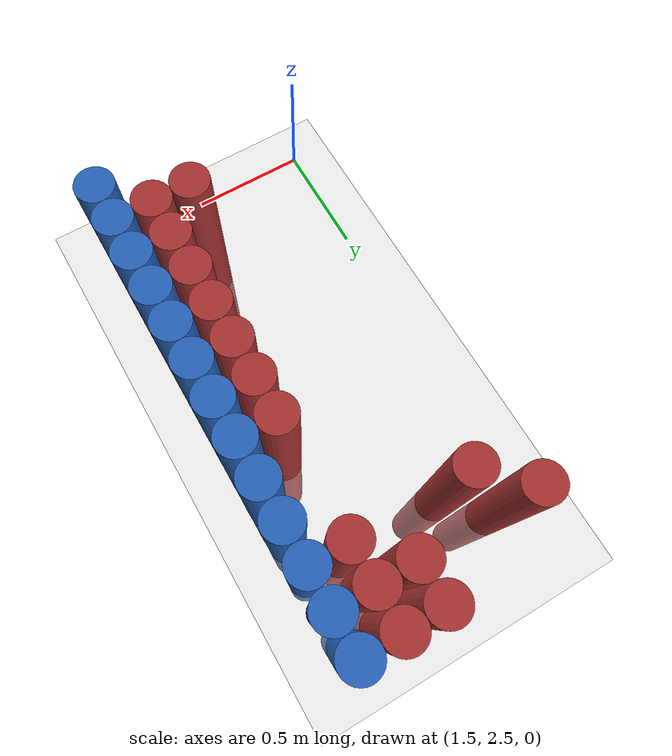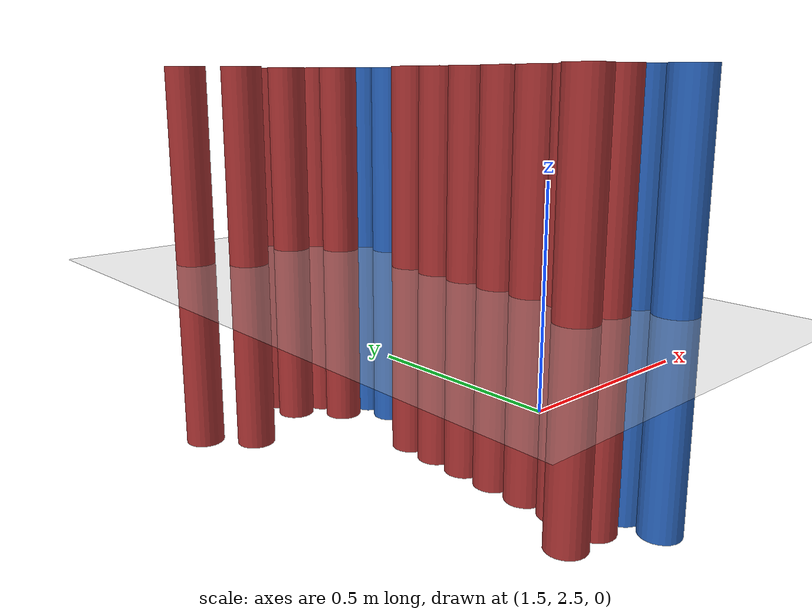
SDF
<sdf version="1.6">
 <world name="default">
  <model name="ground_plane">
   <static>1</static>
   <link name="link">
    <collision name="collision">
     <geometry><plane><normal>0 0 1</normal><size>100 100</size></plane></geometry>
     <surface><friction><ode><mu>100</mu><mu2>50</mu2></ode></friction></surface>
    </collision>
    <visual name="visual">
     <cast_shadows>0</cast_shadows>
     <geometry><plane><normal>0 0 1</normal><size>100 100</size></plane></geometry>
     <material>
      <script><uri>file://media/materials/scripts/gazebo.material</uri><name>Gazebo/Grey</name></script>
     </material>
    </visual>
   </link>
  </model>
  <model name="unit_cylinder_207">
   <static>1</static>
   <pose>1.675000 4.375000 0.000000 0.000000 0.000000 0.000000</pose>
   <link name="link">
    <inertial>
     <mass>1</mass>
     <inertia><ixx>0.145833</ixx><ixy>0</ixy><ixz>0</ixz><iyy>0.145833</iyy><iyz>0</iyz><izz>0.125</izz></inertia>
    </inertial>
    <collision name="collision">
     <geometry><cylinder><radius>0.075000</radius><length>1.5</length></cylinder></geometry>
    </collision>
    <visual name="visual">
     <geometry><cylinder><radius>0.075000</radius><length>1.5</length></cylinder></geometry>
     <material>
      <ambient>0.648000 0.192000 0.192000 1</ambient>
      <diffuse>0.648000 0.192000 0.192000 1</diffuse>
     </material>
     <material>
      <script><name>Gazebo/Grey</name><uri>file://media/materials/scripts/gazebo.material</uri></script>
     </material>
    </visual>
   </link>
  </model>
  <model name="unit_cylinder_213">
   <static>1</static>
   <pose>1.825000 4.225000 0.000000 0.000000 0.000000 0.000000</pose>
   <link name="link">
    <inertial>
     <mass>1</mass>
     <inertia><ixx>0.145833</ixx><ixy>0</ixy><ixz>0</ixz><iyy>0.145833</iyy><iyz>0</iyz><izz>0.125</izz></inertia>
    </inertial>
    <collision name="collision">
     <geometry><cylinder><radius>0.075000</radius><length>1.5</length></cylinder></geometry>
    </collision>
    <visual name="visual">
     <geometry><cylinder><radius>0.075000</radius><length>1.5</length></cylinder></geometry>
     <material>
      <ambient>0.648000 0.192000 0.192000 1</ambient>
      <diffuse>0.648000 0.192000 0.192000 1</diffuse>
     </material>
     <material>
      <script><name>Gazebo/Grey</name><uri>file://media/materials/scripts/gazebo.material</uri></script>
     </material>
    </visual>
   </link>
  </model>
  <model name="unit_cylinder_219">
   <static>1</static>
   <pose>2.125000 2.875000 0.000000 0.000000 0.000000 0.000000</pose>
   <link name="link">
    <inertial>
     <mass>1</mass>
     <inertia><ixx>0.145833</ixx><ixy>0</ixy><ixz>0</ixz><iyy>0.145833</iyy><iyz>0</iyz><izz>0.125</izz></inertia>
    </inertial>
    <collision name="collision">
     <geometry><cylinder><radius>0.075000</radius><length>1.5</length></cylinder></geometry>
    </collision>
    <visual name="visual">
     <geometry><cylinder><radius>0.075000</radius><length>1.5</length></cylinder></geometry>
     <material>
      <ambient>0.648000 0.192000 0.192000 1</ambient>
      <diffuse>0.648000 0.192000 0.192000 1</diffuse>
     </material>
     <material>
      <script><name>Gazebo/Grey</name><uri>file://media/materials/scripts/gazebo.material</uri></script>
     </material>
    </visual>
   </link>
  </model>
  <model name="unit_cylinder_220">
   <static>1</static>
   <pose>2.125000 4.375000 0.000000 0.000000 0.000000 0.000000</pose>
   <link name="link">
    <inertial>
     <mass>1</mass>
     <inertia><ixx>0.145833</ixx><ixy>0</ixy><ixz>0</ixz><iyy>0.145833</iyy><iyz>0</iyz><izz>0.125</izz></inertia>
    </inertial>
    <collision name="collision">
     <geometry><cylinder><radius>0.075000</radius><length>1.5</length></cylinder></geometry>
    </collision>
    <visual name="visual">
     <geometry><cylinder><radius>0.075000</radius><length>1.5</length></cylinder></geometry>
     <material>
      <ambient>0.648000 0.192000 0.192000 1</ambient>
      <diffuse>0.648000 0.192000 0.192000 1</diffuse>
     </material>
     <material>
      <script><name>Gazebo/Grey</name><uri>file://media/materials/scripts/gazebo.material</uri></script>
     </material>
    </visual>
   </link>
  </model>
  <model name="unit_cylinder_221">
   <static>1</static>
   <pose>2.125000 4.525000 0.000000 0.000000 0.000000 0.000000</pose>
   <link name="link">
    <inertial>
     <mass>1</mass>
     <inertia><ixx>0.145833</ixx><ixy>0</ixy><ixz>0</ixz><iyy>0.145833</iyy><iyz>0</iyz><izz>0.125</izz></inertia>
    </inertial>
    <collision name="collision">
     <geometry><cylinder><radius>0.075000</radius><length>1.5</length></cylinder></geometry>
    </collision>
    <visual name="visual">
     <geometry><cylinder><radius>0.075000</radius><length>1.5</length></cylinder></geometry>
     <material>
      <ambient>0.648000 0.192000 0.192000 1</ambient>
      <diffuse>0.648000 0.192000 0.192000 1</diffuse>
     </material>
     <material>
      <script><name>Gazebo/Grey</name><uri>file://media/materials/scripts/gazebo.material</uri></script>
     </material>
    </visual>
   </link>
  </model>
  <model name="unit_cylinder_231">
   <static>1</static>
   <pose>2.275000 2.875000 0.000000 0.000000 0.000000 0.000000</pose>
   <link name="link">
    <inertial>
     <mass>1</mass>
     <inertia><ixx>0.145833</ixx><ixy>0</ixy><ixz>0</ixz><iyy>0.145833</iyy><iyz>0</iyz><izz>0.125</izz></inertia>
    </inertial>
    <collision name="collision">
     <geometry><cylinder><radius>0.075000</radius><length>1.5</length></cylinder></geometry>
    </collision>
    <visual name="visual">
     <geometry><cylinder><radius>0.075000</radius><length>1.5</length></cylinder></geometry>
     <material>
      <ambient>0.648000 0.192000 0.192000 1</ambient>
      <diffuse>0.648000 0.192000 0.192000 1</diffuse>
     </material>
     <material>
      <script><name>Gazebo/Grey</name><uri>file://media/materials/scripts/gazebo.material</uri></script>
     </material>
    </visual>
   </link>
  </model>
  <model name="unit_cylinder_232">
   <static>1</static>
   <pose>2.275000 3.025000 0.000000 0.000000 0.000000 0.000000</pose>
   <link name="link">
    <inertial>
     <mass>1</mass>
     <inertia><ixx>0.145833</ixx><ixy>0</ixy><ixz>0</ixz><iyy>0.145833</iyy><iyz>0</iyz><izz>0.125</izz></inertia>
    </inertial>
    <collision name="collision">
     <geometry><cylinder><radius>0.075000</radius><length>1.5</length></cylinder></geometry>
    </collision>
    <visual name="visual">
     <geometry><cylinder><radius>0.075000</radius><length>1.5</length></cylinder></geometry>
     <material>
      <ambient>0.648000 0.192000 0.192000 1</ambient>
      <diffuse>0.648000 0.192000 0.192000 1</diffuse>
     </material>
     <material>
      <script><name>Gazebo/Grey</name><uri>file://media/materials/scripts/gazebo.material</uri></script>
     </material>
    </visual>
   </link>
  </model>
  <model name="unit_cylinder_233">
   <static>1</static>
   <pose>2.275000 3.175000 0.000000 0.000000 0.000000 0.000000</pose>
   <link name="link">
    <inertial>
     <mass>1</mass>
     <inertia><ixx>0.145833</ixx><ixy>0</ixy><ixz>0</ixz><iyy>0.145833</iyy><iyz>0</iyz><izz>0.125</izz></inertia>
    </inertial>
    <collision name="collision">
     <geometry><cylinder><radius>0.075000</radius><length>1.5</length></cylinder></geometry>
    </collision>
    <visual name="visual">
     <geometry><cylinder><radius>0.075000</radius><length>1.5</length></cylinder></geometry>
     <material>
      <ambient>0.648000 0.192000 0.192000 1</ambient>
      <diffuse>0.648000 0.192000 0.192000 1</diffuse>
     </material>
     <material>
      <script><name>Gazebo/Grey</name><uri>file://media/materials/scripts/gazebo.material</uri></script>
     </material>
    </visual>
   </link>
  </model>
  <model name="unit_cylinder_234">
   <static>1</static>
   <pose>2.275000 3.325000 0.000000 0.000000 0.000000 0.000000</pose>
   <link name="link">
    <inertial>
     <mass>1</mass>
     <inertia><ixx>0.145833</ixx><ixy>0</ixy><ixz>0</ixz><iyy>0.145833</iyy><iyz>0</iyz><izz>0.125</izz></inertia>
    </inertial>
    <collision name="collision">
     <geometry><cylinder><radius>0.075000</radius><length>1.5</length></cylinder></geometry>
    </collision>
    <visual name="visual">
     <geometry><cylinder><radius>0.075000</radius><length>1.5</length></cylinder></geometry>
     <material>
      <ambient>0.648000 0.192000 0.192000 1</ambient>
      <diffuse>0.648000 0.192000 0.192000 1</diffuse>
     </material>
     <material>
      <script><name>Gazebo/Grey</name><uri>file://media/materials/scripts/gazebo.material</uri></script>
     </material>
    </visual>
   </link>
  </model>
  <model name="unit_cylinder_235">
   <static>1</static>
   <pose>2.275000 3.475000 0.000000 0.000000 0.000000 0.000000</pose>
   <link name="link">
    <inertial>
     <mass>1</mass>
     <inertia><ixx>0.145833</ixx><ixy>0</ixy><ixz>0</ixz><iyy>0.145833</iyy><iyz>0</iyz><izz>0.125</izz></inertia>
    </inertial>
    <collision name="collision">
     <geometry><cylinder><radius>0.075000</radius><length>1.5</length></cylinder></geometry>
    </collision>
    <visual name="visual">
     <geometry><cylinder><radius>0.075000</radius><length>1.5</length></cylinder></geometry>
     <material>
      <ambient>0.648000 0.192000 0.192000 1</ambient>
      <diffuse>0.648000 0.192000 0.192000 1</diffuse>
     </material>
     <material>
      <script><name>Gazebo/Grey</name><uri>file://media/materials/scripts/gazebo.material</uri></script>
     </material>
    </visual>
   </link>
  </model>
  <model name="unit_cylinder_236">
   <static>1</static>
   <pose>2.275000 3.625000 0.000000 0.000000 0.000000 0.000000</pose>
   <link name="link">
    <inertial>
     <mass>1</mass>
     <inertia><ixx>0.145833</ixx><ixy>0</ixy><ixz>0</ixz><iyy>0.145833</iyy><iyz>0</iyz><izz>0.125</izz></inertia>
    </inertial>
    <collision name="collision">
     <geometry><cylinder><radius>0.075000</radius><length>1.5</length></cylinder></geometry>
    </collision>
    <visual name="visual">
     <geometry><cylinder><radius>0.075000</radius><length>1.5</length></cylinder></geometry>
     <material>
      <ambient>0.648000 0.192000 0.192000 1</ambient>
      <diffuse>0.648000 0.192000 0.192000 1</diffuse>
     </material>
     <material>
      <script><name>Gazebo/Grey</name><uri>file://media/materials/scripts/gazebo.material</uri></script>
     </material>
    </visual>
   </link>
  </model>
  <model name="unit_cylinder_237">
   <static>1</static>
   <pose>2.275000 3.775000 0.000000 0.000000 0.000000 0.000000</pose>
   <link name="link">
    <inertial>
     <mass>1</mass>
     <inertia><ixx>0.145833</ixx><ixy>0</ixy><ixz>0</ixz><iyy>0.145833</iyy><iyz>0</iyz><izz>0.125</izz></inertia>
    </inertial>
    <collision name="collision">
     <geometry><cylinder><radius>0.075000</radius><length>1.5</length></cylinder></geometry>
    </collision>
    <visual name="visual">
     <geometry><cylinder><radius>0.075000</radius><length>1.5</length></cylinder></geometry>
     <material>
      <ambient>0.648000 0.192000 0.192000 1</ambient>
      <diffuse>0.648000 0.192000 0.192000 1</diffuse>
     </material>
     <material>
      <script><name>Gazebo/Grey</name><uri>file://media/materials/scripts/gazebo.material</uri></script>
     </material>
    </visual>
   </link>
  </model>
  <model name="unit_cylinder_238">
   <static>1</static>
   <pose>2.275000 4.225000 0.000000 0.000000 0.000000 0.000000</pose>
   <link name="link">
    <inertial>
     <mass>1</mass>
     <inertia><ixx>0.145833</ixx><ixy>0</ixy><ixz>0</ixz><iyy>0.145833</iyy><iyz>0</iyz><izz>0.125</izz></inertia>
    </inertial>
    <collision name="collision">
     <geometry><cylinder><radius>0.075000</radius><length>1.5</length></cylinder></geometry>
    </collision>
    <visual name="visual">
     <geometry><cylinder><radius>0.075000</radius><length>1.5</length></cylinder></geometry>
     <material>
      <ambient>0.648000 0.192000 0.192000 1</ambient>
      <diffuse>0.648000 0.192000 0.192000 1</diffuse>
     </material>
     <material>
      <script><name>Gazebo/Grey</name><uri>file://media/materials/scripts/gazebo.material</uri></script>
     </material>
    </visual>
   </link>
  </model>
  <model name="unit_cylinder_239">
   <static>1</static>
   <pose>2.275000 4.375000 0.000000 0.000000 0.000000 0.000000</pose>
   <link name="link">
    <inertial>
     <mass>1</mass>
     <inertia><ixx>0.145833</ixx><ixy>0</ixy><ixz>0</ixz><iyy>0.145833</iyy><iyz>0</iyz><izz>0.125</izz></inertia>
    </inertial>
    <collision name="collision">
     <geometry><cylinder><radius>0.075000</radius><length>1.5</length></cylinder></geometry>
    </collision>
    <visual name="visual">
     <geometry><cylinder><radius>0.075000</radius><length>1.5</length></cylinder></geometry>
     <material>
      <ambient>0.648000 0.192000 0.192000 1</ambient>
      <diffuse>0.648000 0.192000 0.192000 1</diffuse>
     </material>
     <material>
      <script><name>Gazebo/Grey</name><uri>file://media/materials/scripts/gazebo.material</uri></script>
     </material>
    </visual>
   </link>
  </model>
  <model name="unit_cylinder_240">
   <static>1</static>
   <pose>2.275000 4.525000 0.000000 0.000000 0.000000 0.000000</pose>
   <link name="link">
    <inertial>
     <mass>1</mass>
     <inertia><ixx>0.145833</ixx><ixy>0</ixy><ixz>0</ixz><iyy>0.145833</iyy><iyz>0</iyz><izz>0.125</izz></inertia>
    </inertial>
    <collision name="collision">
     <geometry><cylinder><radius>0.075000</radius><length>1.5</length></cylinder></geometry>
    </collision>
    <visual name="visual">
     <geometry><cylinder><radius>0.075000</radius><length>1.5</length></cylinder></geometry>
     <material>
      <ambient>0.648000 0.192000 0.192000 1</ambient>
      <diffuse>0.648000 0.192000 0.192000 1</diffuse>
     </material>
     <material>
      <script><name>Gazebo/Grey</name><uri>file://media/materials/scripts/gazebo.material</uri></script>
     </material>
    </visual>
   </link>
  </model>
  <model name="unit_cylinder_258">
   <static>1</static>
   <pose>2.425000 2.725000 0.000000 0.000000 0.000000 0.000000</pose>
   <link name="link">
    <inertial>
     <mass>1</mass>
     <inertia><ixx>0.145833</ixx><ixy>0</ixy><ixz>0</ixz><iyy>0.145833</iyy><iyz>0</iyz><izz>0.125</izz></inertia>
    </inertial>
    <collision name="collision">
     <geometry><cylinder><radius>0.075000</radius><length>1.5</length></cylinder></geometry>
    </collision>
    <visual name="visual">
     <geometry><cylinder><radius>0.075000</radius><length>1.5</length></cylinder></geometry>
     <material>
      <ambient>0.152000 0.379000 0.720000 1</ambient>
      <diffuse>0.152000 0.379000 0.720000 1</diffuse>
     </material>
     <material>
      <script><name>Gazebo/Grey</name><uri>file://media/materials/scripts/gazebo.material</uri></script>
     </material>
    </visual>
   </link>
  </model>
  <model name="unit_cylinder_259">
   <static>1</static>
   <pose>2.425000 2.875000 0.000000 0.000000 0.000000 0.000000</pose>
   <link name="link">
    <inertial>
     <mass>1</mass>
     <inertia><ixx>0.145833</ixx><ixy>0</ixy><ixz>0</ixz><iyy>0.145833</iyy><iyz>0</iyz><izz>0.125</izz></inertia>
    </inertial>
    <collision name="collision">
     <geometry><cylinder><radius>0.075000</radius><length>1.5</length></cylinder></geometry>
    </collision>
    <visual name="visual">
     <geometry><cylinder><radius>0.075000</radius><length>1.5</length></cylinder></geometry>
     <material>
      <ambient>0.152000 0.379000 0.720000 1</ambient>
      <diffuse>0.152000 0.379000 0.720000 1</diffuse>
     </material>
     <material>
      <script><name>Gazebo/Grey</name><uri>file://media/materials/scripts/gazebo.material</uri></script>
     </material>
    </visual>
   </link>
  </model>
  <model name="unit_cylinder_260">
   <static>1</static>
   <pose>2.425000 3.025000 0.000000 0.000000 0.000000 0.000000</pose>
   <link name="link">
    <inertial>
     <mass>1</mass>
     <inertia><ixx>0.145833</ixx><ixy>0</ixy><ixz>0</ixz><iyy>0.145833</iyy><iyz>0</iyz><izz>0.125</izz></inertia>
    </inertial>
    <collision name="collision">
     <geometry><cylinder><radius>0.075000</radius><length>1.5</length></cylinder></geometry>
    </collision>
    <visual name="visual">
     <geometry><cylinder><radius>0.075000</radius><length>1.5</length></cylinder></geometry>
     <material>
      <ambient>0.152000 0.379000 0.720000 1</ambient>
      <diffuse>0.152000 0.379000 0.720000 1</diffuse>
     </material>
     <material>
      <script><name>Gazebo/Grey</name><uri>file://media/materials/scripts/gazebo.material</uri></script>
     </material>
    </visual>
   </link>
  </model>
  <model name="unit_cylinder_261">
   <static>1</static>
   <pose>2.425000 3.175000 0.000000 0.000000 0.000000 0.000000</pose>
   <link name="link">
    <inertial>
     <mass>1</mass>
     <inertia><ixx>0.145833</ixx><ixy>0</ixy><ixz>0</ixz><iyy>0.145833</iyy><iyz>0</iyz><izz>0.125</izz></inertia>
    </inertial>
    <collision name="collision">
     <geometry><cylinder><radius>0.075000</radius><length>1.5</length></cylinder></geometry>
    </collision>
    <visual name="visual">
     <geometry><cylinder><radius>0.075000</radius><length>1.5</length></cylinder></geometry>
     <material>
      <ambient>0.152000 0.379000 0.720000 1</ambient>
      <diffuse>0.152000 0.379000 0.720000 1</diffuse>
     </material>
     <material>
      <script><name>Gazebo/Grey</name><uri>file://media/materials/scripts/gazebo.material</uri></script>
     </material>
    </visual>
   </link>
  </model>
  <model name="unit_cylinder_262">
   <static>1</static>
   <pose>2.425000 3.325000 0.000000 0.000000 0.000000 0.000000</pose>
   <link name="link">
    <inertial>
     <mass>1</mass>
     <inertia><ixx>0.145833</ixx><ixy>0</ixy><ixz>0</ixz><iyy>0.145833</iyy><iyz>0</iyz><izz>0.125</izz></inertia>
    </inertial>
    <collision name="collision">
     <geometry><cylinder><radius>0.075000</radius><length>1.5</length></cylinder></geometry>
    </collision>
    <visual name="visual">
     <geometry><cylinder><radius>0.075000</radius><length>1.5</length></cylinder></geometry>
     <material>
      <ambient>0.152000 0.379000 0.720000 1</ambient>
      <diffuse>0.152000 0.379000 0.720000 1</diffuse>
     </material>
     <material>
      <script><name>Gazebo/Grey</name><uri>file://media/materials/scripts/gazebo.material</uri></script>
     </material>
    </visual>
   </link>
  </model>
  <model name="unit_cylinder_263">
   <static>1</static>
   <pose>2.425000 3.475000 0.000000 0.000000 0.000000 0.000000</pose>
   <link name="link">
    <inertial>
     <mass>1</mass>
     <inertia><ixx>0.145833</ixx><ixy>0</ixy><ixz>0</ixz><iyy>0.145833</iyy><iyz>0</iyz><izz>0.125</izz></inertia>
    </inertial>
    <collision name="collision">
     <geometry><cylinder><radius>0.075000</radius><length>1.5</length></cylinder></geometry>
    </collision>
    <visual name="visual">
     <geometry><cylinder><radius>0.075000</radius><length>1.5</length></cylinder></geometry>
     <material>
      <ambient>0.152000 0.379000 0.720000 1</ambient>
      <diffuse>0.152000 0.379000 0.720000 1</diffuse>
     </material>
     <material>
      <script><name>Gazebo/Grey</name><uri>file://media/materials/scripts/gazebo.material</uri></script>
     </material>
    </visual>
   </link>
  </model>
  <model name="unit_cylinder_264">
   <static>1</static>
   <pose>2.425000 3.625000 0.000000 0.000000 0.000000 0.000000</pose>
   <link name="link">
    <inertial>
     <mass>1</mass>
     <inertia><ixx>0.145833</ixx><ixy>0</ixy><ixz>0</ixz><iyy>0.145833</iyy><iyz>0</iyz><izz>0.125</izz></inertia>
    </inertial>
    <collision name="collision">
     <geometry><cylinder><radius>0.075000</radius><length>1.5</length></cylinder></geometry>
    </collision>
    <visual name="visual">
     <geometry><cylinder><radius>0.075000</radius><length>1.5</length></cylinder></geometry>
     <material>
      <ambient>0.152000 0.379000 0.720000 1</ambient>
      <diffuse>0.152000 0.379000 0.720000 1</diffuse>
     </material>
     <material>
      <script><name>Gazebo/Grey</name><uri>file://media/materials/scripts/gazebo.material</uri></script>
     </material>
    </visual>
   </link>
  </model>
  <model name="unit_cylinder_265">
   <static>1</static>
   <pose>2.425000 3.775000 0.000000 0.000000 0.000000 0.000000</pose>
   <link name="link">
    <inertial>
     <mass>1</mass>
     <inertia><ixx>0.145833</ixx><ixy>0</ixy><ixz>0</ixz><iyy>0.145833</iyy><iyz>0</iyz><izz>0.125</izz></inertia>
    </inertial>
    <collision name="collision">
     <geometry><cylinder><radius>0.075000</radius><length>1.5</length></cylinder></geometry>
    </collision>
    <visual name="visual">
     <geometry><cylinder><radius>0.075000</radius><length>1.5</length></cylinder></geometry>
     <material>
      <ambient>0.152000 0.379000 0.720000 1</ambient>
      <diffuse>0.152000 0.379000 0.720000 1</diffuse>
     </material>
     <material>
      <script><name>Gazebo/Grey</name><uri>file://media/materials/scripts/gazebo.material</uri></script>
     </material>
    </visual>
   </link>
  </model>
  <model name="unit_cylinder_266">
   <static>1</static>
   <pose>2.425000 3.925000 0.000000 0.000000 0.000000 0.000000</pose>
   <link name="link">
    <inertial>
     <mass>1</mass>
     <inertia><ixx>0.145833</ixx><ixy>0</ixy><ixz>0</ixz><iyy>0.145833</iyy><iyz>0</iyz><izz>0.125</izz></inertia>
    </inertial>
    <collision name="collision">
     <geometry><cylinder><radius>0.075000</radius><length>1.5</length></cylinder></geometry>
    </collision>
    <visual name="visual">
     <geometry><cylinder><radius>0.075000</radius><length>1.5</length></cylinder></geometry>
     <material>
      <ambient>0.152000 0.379000 0.720000 1</ambient>
      <diffuse>0.152000 0.379000 0.720000 1</diffuse>
     </material>
     <material>
      <script><name>Gazebo/Grey</name><uri>file://media/materials/scripts/gazebo.material</uri></script>
     </material>
    </visual>
   </link>
  </model>
  <model name="unit_cylinder_267">
   <static>1</static>
   <pose>2.425000 4.075000 0.000000 0.000000 0.000000 0.000000</pose>
   <link name="link">
    <inertial>
     <mass>1</mass>
     <inertia><ixx>0.145833</ixx><ixy>0</ixy><ixz>0</ixz><iyy>0.145833</iyy><iyz>0</iyz><izz>0.125</izz></inertia>
    </inertial>
    <collision name="collision">
     <geometry><cylinder><radius>0.075000</radius><length>1.5</length></cylinder></geometry>
    </collision>
    <visual name="visual">
     <geometry><cylinder><radius>0.075000</radius><length>1.5</length></cylinder></geometry>
     <material>
      <ambient>0.152000 0.379000 0.720000 1</ambient>
      <diffuse>0.152000 0.379000 0.720000 1</diffuse>
     </material>
     <material>
      <script><name>Gazebo/Grey</name><uri>file://media/materials/scripts/gazebo.material</uri></script>
     </material>
    </visual>
   </link>
  </model>
  <model name="unit_cylinder_268">
   <static>1</static>
   <pose>2.425000 4.225000 0.000000 0.000000 0.000000 0.000000</pose>
   <link name="link">
    <inertial>
     <mass>1</mass>
     <inertia><ixx>0.145833</ixx><ixy>0</ixy><ixz>0</ixz><iyy>0.145833</iyy><iyz>0</iyz><izz>0.125</izz></inertia>
    </inertial>
    <collision name="collision">
     <geometry><cylinder><radius>0.075000</radius><length>1.5</length></cylinder></geometry>
    </collision>
    <visual name="visual">
     <geometry><cylinder><radius>0.075000</radius><length>1.5</length></cylinder></geometry>
     <material>
      <ambient>0.152000 0.379000 0.720000 1</ambient>
      <diffuse>0.152000 0.379000 0.720000 1</diffuse>
     </material>
     <material>
      <script><name>Gazebo/Grey</name><uri>file://media/materials/scripts/gazebo.material</uri></script>
     </material>
    </visual>
   </link>
  </model>
  <model name="unit_cylinder_269">
   <static>1</static>
   <pose>2.425000 4.375000 0.000000 0.000000 0.000000 0.000000</pose>
   <link name="link">
    <inertial>
     <mass>1</mass>
     <inertia><ixx>0.145833</ixx><ixy>0</ixy><ixz>0</ixz><iyy>0.145833</iyy><iyz>0</iyz><izz>0.125</izz></inertia>
    </inertial>
    <collision name="collision">
     <geometry><cylinder><radius>0.075000</radius><length>1.5</length></cylinder></geometry>
    </collision>
    <visual name="visual">
     <geometry><cylinder><radius>0.075000</radius><length>1.5</length></cylinder></geometry>
     <material>
      <ambient>0.152000 0.379000 0.720000 1</ambient>
      <diffuse>0.152000 0.379000 0.720000 1</diffuse>
     </material>
     <material>
      <script><name>Gazebo/Grey</name><uri>file://media/materials/scripts/gazebo.material</uri></script>
     </material>
    </visual>
   </link>
  </model>
  <model name="unit_cylinder_270">
   <static>1</static>
   <pose>2.425000 4.525000 0.000000 0.000000 0.000000 0.000000</pose>
   <link name="link">
    <inertial>
     <mass>1</mass>
     <inertia><ixx>0.145833</ixx><ixy>0</ixy><ixz>0</ixz><iyy>0.145833</iyy><iyz>0</iyz><izz>0.125</izz></inertia>
    </inertial>
    <collision name="collision">
     <geometry><cylinder><radius>0.075000</radius><length>1.5</length></cylinder></geometry>
    </collision>
    <visual name="visual">
     <geometry><cylinder><radius>0.075000</radius><length>1.5</length></cylinder></geometry>
     <material>
      <ambient>0.152000 0.379000 0.720000 1</ambient>
      <diffuse>0.152000 0.379000 0.720000 1</diffuse>
     </material>
     <material>
      <script><name>Gazebo/Grey</name><uri>file://media/materials/scripts/gazebo.material</uri></script>
     </material>
    </visual>
   </link>
  </model>
 </world>
</sdf>
